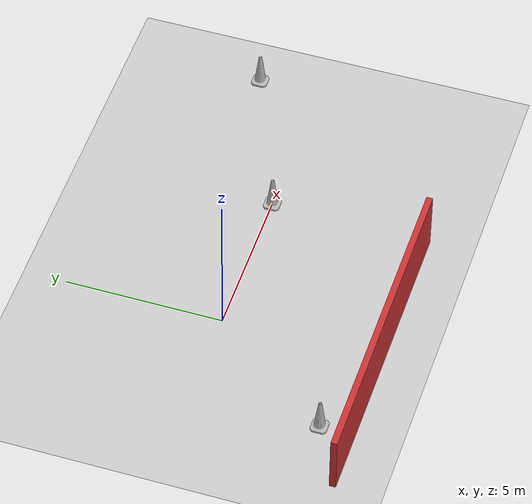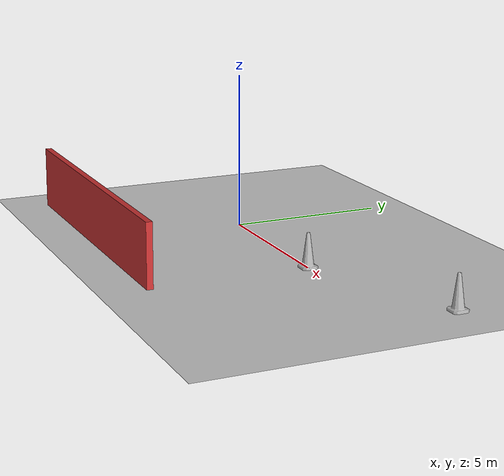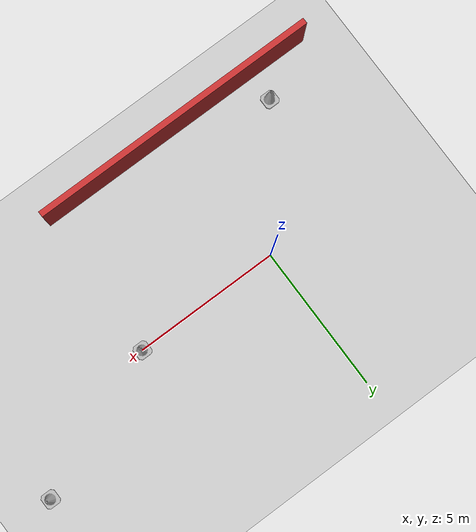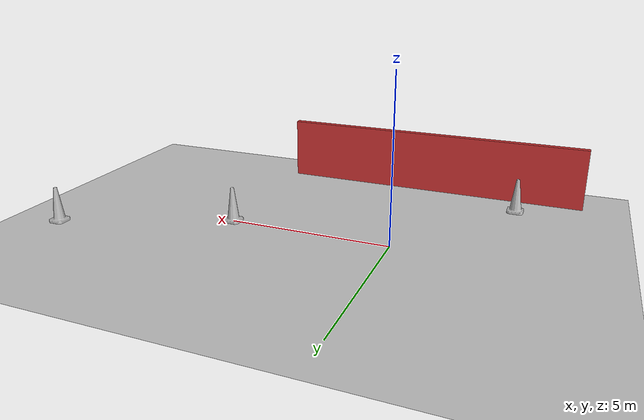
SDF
<?xml version="1.0" ?>
<sdf version="1.7">
  <world name="default">

    <!-- Ground plane -->
    <include>
      <uri>model://ground_plane</uri>
    </include>

    <!-- Sun -->
    <include>
      <uri>model://sun</uri>
    </include>

    <!-- Realistic construction cones -->
    <include>
      <uri>model://construction_cone</uri>
      <pose>5 0 0 0 0 0</pose>
    </include>

    <include>
      <uri>model://construction_cone</uri>
      <pose>10 2 0 0 0 1.57</pose>
    </include>

    <include>
      <uri>model://construction_cone</uri>
      <pose>-3 -4 0 0 0 0</pose>
    </include>

    <!-- Optional walls -->
    <model name='wall_example'>
      <static>true</static>
      <link name='wall_link'>
        <visual name='visual'>
          <geometry>
            <box>
              <size>10 0.2 2</size>
            </box>
          </geometry>
          <material>
            <ambient>0.8 0.3 0.3 1</ambient>
            <diffuse>0.8 0.2 0.2 1</diffuse>
          </material>
        </visual>
        <collision name='collision'>
          <geometry>
            <box>
              <size>10 0.2 2</size>
            </box>
          </geometry>
        </collision>
      </link>
      <pose>0 -5 1 0 0 0</pose>
    </model>

  </world>
</sdf>

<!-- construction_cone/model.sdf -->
<sdf version="1.5">
  <model name="Construction Cone">
    <link name="link">
      <collision name="collision">
        <geometry>
          <mesh>
            <scale>10 10 10</scale>
            <uri>file://isr-testbed/construction_cone/meshes/construction_cone.dae</uri>
          </mesh>
        </geometry>
      </collision>
      <visual name="visual">
        <geometry>
          <mesh>
            <scale>10 10 10</scale>
            <uri>file://isr-testbed/construction_cone/meshes/construction_cone.dae</uri>
          </mesh>
        </geometry>
      </visual>
    </link>
  </model>
</sdf>
